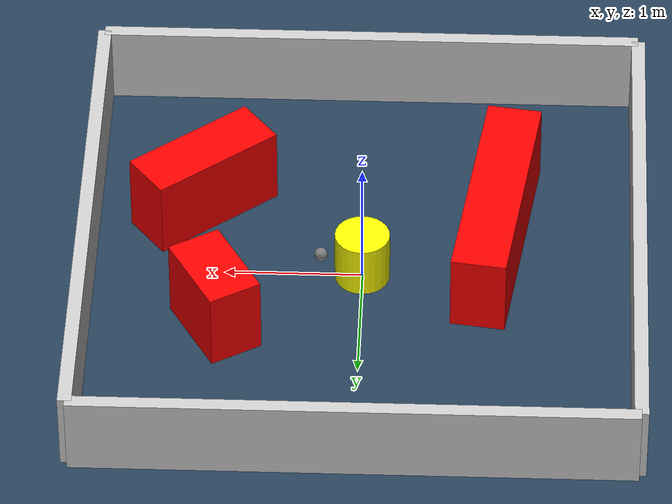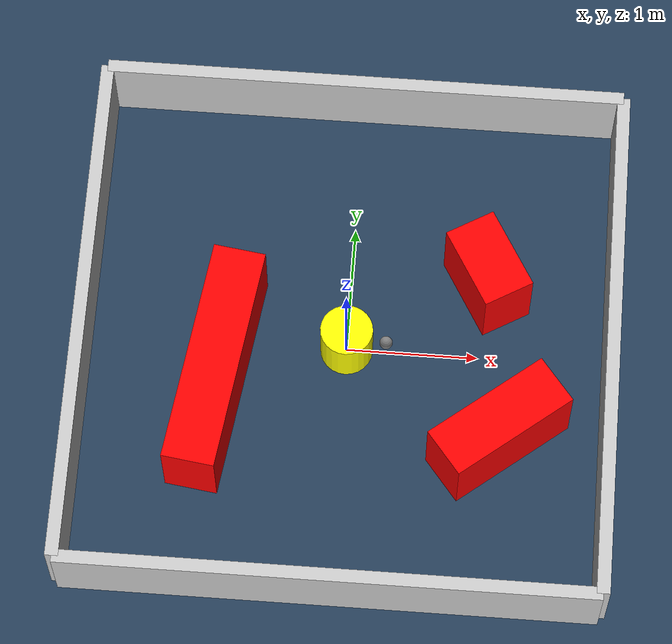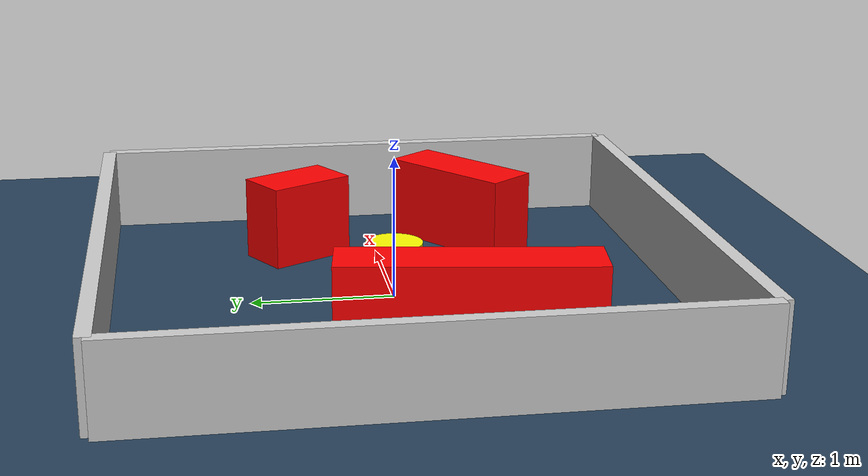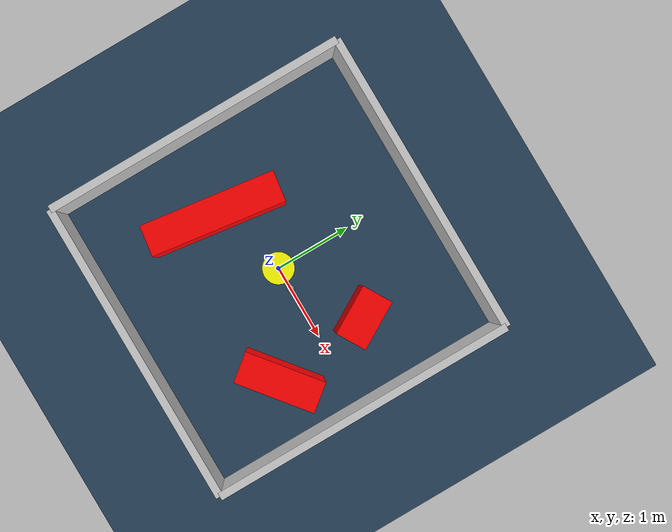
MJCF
<?xml version="1.0" ?>
<mujoco model="generated_environment">
  <option timestep="0.01" integrator="RK4" cone="elliptic"/>
  <default>
    <geom density="1"/>
  </default>
  <asset>
    <texture builtin="gradient" height="3072" rgb1="0.3 0.5 0.7" rgb2="0 0 0" type="skybox" width="512"/>
    <texture builtin="checker" height="300" mark="edge" markrgb="0.8 0.8 0.8" name="groundplane" rgb1="0.2 0.3 0.4" rgb2="0.1 0.2 0.3" type="2d" width="300"/>
    <material name="groundplane" reflectance="0.2" texrepeat="5 5" texture="groundplane" texuniform="true"/>
    <material name="robot" rgba="0.0 1.0 0.0 1"/>
  </asset>
  <worldbody>
    <light dir="0 0 -1" directional="true" pos="0 0 1.5"/>
    <geom condim="4" friction="1.0 0.005 0.001" material="groundplane" name="floor" size="0 0 0.05" type="plane"/>
    <body name="walls">
      <geom name="wall_1" condim="4" pos="-2.0 0.0 0.3" rgba="0.800000011920929 0.800000011920929 0.800000011920929 1.0" size="0.05 2.0 0.3" type="box"/>
      <geom name="wall_2" condim="4" pos="2.0 0.0 0.3" rgba="0.800000011920929 0.800000011920929 0.800000011920929 1.0" size="0.05 2.0 0.3" type="box"/>
      <geom name="wall_3" condim="4" pos="0.0 -2.0 0.3" rgba="0.800000011920929 0.800000011920929 0.800000011920929 1.0" size="2.0 0.05 0.3" type="box"/>
      <geom name="wall_4" condim="4" pos="0.0 2.0 0.3" rgba="0.800000011920929 0.800000011920929 0.800000011920929 1.0" size="2.0 0.05 0.3" type="box"/>
    </body>
    <body name="robot">
      <joint name="joint_x" type="slide" pos="0 0 0" axis="1 0 0"/>
      <joint name="joint_y" type="slide" pos="0 0 0" axis="0 1 0"/>
      <geom name="robot" type="sphere" pos="0.3 0.0 0.2" size="0.05" mass="5." friction="1.0 0.005 0.0001" condim="4" rgba="0.5 0.5 0.5 1.0"/>
      <site name="sensor_ball"/>
    </body>
    <body name="obstacle_movable_1">
      <geom name="obstacle_movable_1" condim="4" pos="0.0 0.0 0.2" euler="0 0 0.0" friction="1.0 0.005 0.001" rgba="1.0 1.0 0.0 1.0" size="0.2 0.2 0.0" type="cylinder" mass="0.1"/>
      <joint type="free"/>
    </body>
    <body name="obstacle_2_static">
      <geom name="obstacle_2_static" condim="4" pos="1.0376912307879393 0.5828752414259164 0.3" euler="0 0 120.18730138020447" friction="1.0 0.005 0.001" rgba="1 0 0 1" size="0.3291207925959412 0.2 0.3" type="box"/>
    </body>
    <body name="obstacle_3_static">
      <geom name="obstacle_3_static" condim="4" pos="-0.9657402145767815 -0.3438671961963611 0.3" euler="0 0 82.0120583888306" friction="1.0 0.005 0.001" rgba="1 0 0 1" size="0.8679119165388203 0.2 0.3" type="box"/>
    </body>
    <body name="obstacle_4_static">
      <geom name="obstacle_4_static" condim="4" pos="1.1872399108657086 -0.6838836826976837 0.3" euler="0 0 38.50779349115649" friction="1.0 0.005 0.001" rgba="1 0 0 1" size="0.5176138197202063 0.2 0.3" type="box"/>
    </body>
  </worldbody>
  <actuator>
    <motor name="actuator_x" joint="joint_x" gear="1" ctrlrange="-1 1"/>
    <motor name="actuator_y" joint="joint_y" gear="1" ctrlrange="-1 1"/>
  </actuator>
</mujoco>
